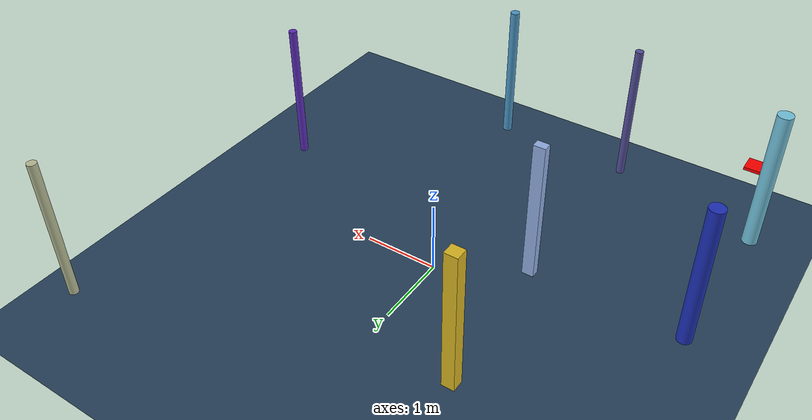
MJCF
<mujoco model="uav_env">
  <compiler angle="degree" coordinate="local" inertiafromgeom="true"/>
  <option integrator="RK4" timestep="0.01"/>
  <asset>
    <texture type="skybox" builtin="gradient" rgb1="0.3 0.5 0.7" rgb2="0 0 0" width="512" height="3072"/>
    <texture name="grid" type="2d" builtin="checker" rgb1="0.1 0.2 0.3" rgb2="0.2 0.3 0.4" width="512" height="512"/>
    <material name="grid" texture="grid" texrepeat="1 1" reflectance="0.2"/>
  </asset>
  <worldbody>
    <geom name="ground" type="plane" size="4.0 4.0 0.1" material="grid"/>
    <light name="light1" pos="0 0 4" dir="0 0 -1" diffuse="1 1 1"/>
    <body name="chassis" pos="-3.0 -3.0 1.0">
      <joint type="free" name="root"/>
      <geom type="box" size="0.12 0.12 0.02" rgba="1.0 0.0 0.0 1.0" mass="0.8"/>
      <site name="motor1" pos="0.08 0.08 0" size="0.01"/>
      <site name="motor2" pos="-0.08 0.08 0" size="0.01"/>
      <site name="motor3" pos="0.08 -0.08 0" size="0.01"/>
      <site name="motor4" pos="-0.08 -0.08 0" size="0.01"/>
    </body>
    <geom name="static_obs_0" type="cylinder" size="0.10281572088714322 1.0" pos="-3.2112309207307526 -2.776884285943928 1.0" rgba="0.4529211536805947 0.772228051390821 0.8706886224835916 1.0"/>
    <geom name="static_obs_1" type="cylinder" size="0.05629265369882688 1.0" pos="3.0528458424906963 -1.096152273870219 1.0" rgba="0.3671503780241082 0.17745085855310824 0.73916235144938 1.0"/>
    <geom name="static_obs_2" type="cylinder" size="0.09904632104978103 1.0" pos="-3.1226786337957932 -0.6301761480635742 1.0" rgba="0.11456857138992015 0.18971564871684096 0.7234008007466931 1.0"/>
    <geom name="static_obs_3" type="box" size="0.08090595718756491 0.05819276238201235 1.0" pos="-1.0663364924292984 -0.6142928759205696 1.0" rgba="0.5691385745798725 0.6808469008933493 0.8864840498974382 1.0"/>
    <geom name="static_obs_4" type="box" size="0.0863072744704534 0.08105247431134384 1.0" pos="-1.1960289061388274 1.4521452631169913 1.0" rgba="0.8501300549032295 0.7097026659279398 0.13697626320766068 1.0"/>
    <geom name="static_obs_5" type="cylinder" size="0.061450273684933235 1.0" pos="3.4895773658079334 2.8449268241280556 1.0" rgba="0.7168936887085071 0.7385459538865213 0.5811652260730906 1.0"/>
    <geom name="static_obs_6" type="cylinder" size="0.05647397183345955 1.0" pos="-1.1510720460444772 -3.2290388413191815 1.0" rgba="0.3292421236747013 0.3011218189336494 0.597076539789383 1.0"/>
    <geom name="static_obs_7" type="cylinder" size="0.06510313052838257 1.0" pos="0.7681648636565603 -3.2815386906389814 1.0" rgba="0.2954811767378208 0.5935395985799538 0.7764316910426461 1.0"/>
  </worldbody>
  <actuator>
    <motor name="m1" gear="0 0 1 0 0 0" site="motor1"/>
    <motor name="m2" gear="0 0 1 0 0 0" site="motor2"/>
    <motor name="m3" gear="0 0 1 0 0 0" site="motor3"/>
    <motor name="m4" gear="0 0 1 0 0 0" site="motor4"/>
  </actuator>
</mujoco>
